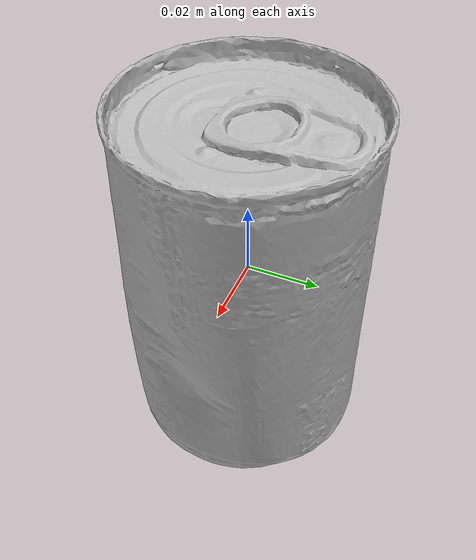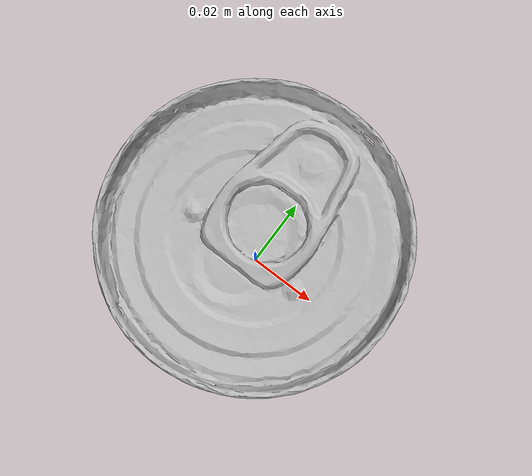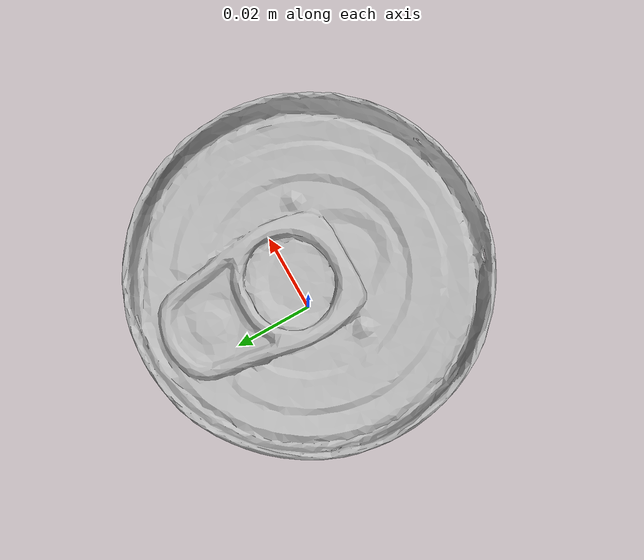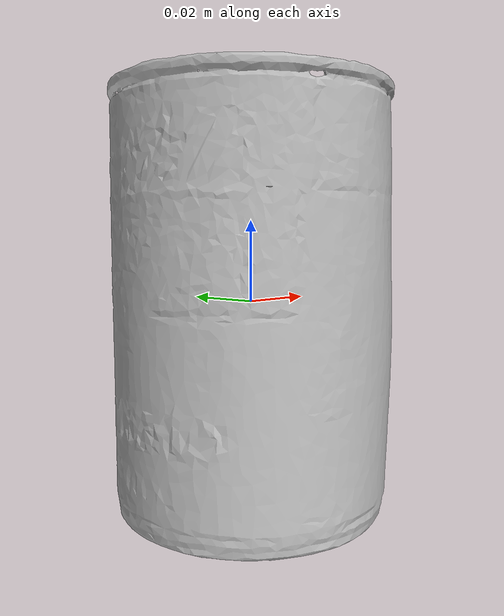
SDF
<?xml version="1.0"?>
<sdf version='1.6'>
<model name="005_tomato_soup_can">

  <link name="base_link_soup">
    <inertial>
      <mass>0.349000</mass>
      <inertia>
        <ixx>0.000402</ixx>
        <ixy>0</ixy>
        <ixz>0</ixz>
        <iyy>0.000200</iyy>
        <iyz>0</iyz>
        <izz>0.000402</izz>
      </inertia>
    </inertial>

    <visual name='base_link_soup'>
	<pose frame=''>0 0 0 0 0 0</pose>
      <geometry>
        <mesh>
          <uri>../meshes/005_tomato_soup_can_textured_updated.obj</uri>
        </mesh>
      </geometry>
    </visual>

    <collision name='box_collision'>
      <pose>0 0 0 0 0 0</pose>
      <geometry>
        <cylinder>
          <radius>0.031850</radius>
          <length>0.099900</length>
        </cylinder>
      </geometry>
      <material>
        <diffuse>0 1 0 1.0</diffuse>
      </material>
    </collision>

  <collision name='point_collision1'>
      <pose>0.0 0.03 0.04 0 0 0</pose>
      <geometry>
        <sphere><radius>1e-7</radius></sphere>
      </geometry>
    </collision>

    <collision name='point_collision2'>
      <pose>0.0 -0.03 0.04 0 0 0</pose>
      <geometry>
        <sphere><radius>1e-7</radius></sphere>
      </geometry>
    </collision>

    <collision name='point_collision3'>
      <pose>0.03 0.0 0.04 0 0 0</pose>
      <geometry>
        <sphere><radius>1e-7</radius></sphere>
      </geometry>
    </collision>

    <collision name='point_collision4'>
      <pose>-0.03 0.0 0.04 0 0 0</pose>
      <geometry>
        <sphere><radius>1e-7</radius></sphere>
      </geometry>
    </collision>

    <collision name='point_collision5'>
      <pose>0.0 0.03 -0.04 0 0 0</pose>
      <geometry>
        <sphere><radius>1e-7</radius></sphere>
      </geometry>
    </collision>

    <collision name='point_collision6'>
      <pose>0.0 -0.03 -0.04 0 0 0</pose>
      <geometry>
        <sphere><radius>1e-7</radius></sphere>
      </geometry>
    </collision>

    <collision name='point_collision7'>
      <pose>0.03 0.0 -0.04 0 0 0</pose>
      <geometry>
        <sphere><radius>1e-7</radius></sphere>
      </geometry>
    </collision>

    <collision name='point_collision8'>
      <pose>-0.03 0.0 -0.04 0 0 0</pose>
      <geometry>
        <sphere><radius>1e-7</radius></sphere>
      </geometry>
    </collision>

   </link>
</model>
</sdf>
